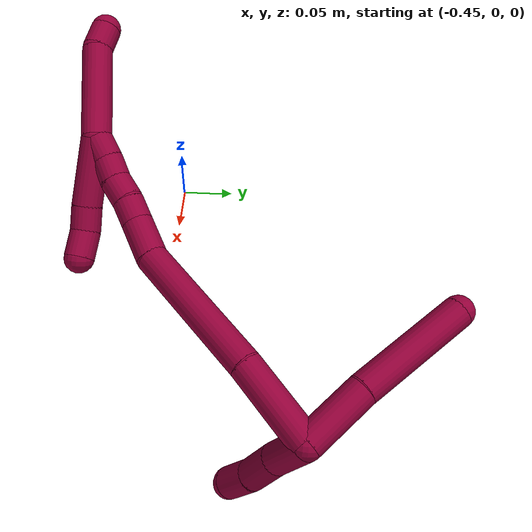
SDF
<sdf version="1.7">
 <world name="default">
  <model name="8">
   <static>0</static>
   <link name="8">
    <collision name="collision-cylinder-e_1_2_8">
     <pose>-0.003822 0.021256 0.016522 -0.91007 -0.141026 0.069088</pose>
     <geometry><cylinder><radius>0.0125</radius><length>0.054383</length></cylinder></geometry>
     <surface>
      <friction><ode><mu>1.16</mu><mu2>1.16</mu2><slip1>0</slip1><slip2>0</slip2></ode></friction>
      <contact><ode><kp>1e+06</kp><kd>1</kd><max_vel>0</max_vel><min_depth>0.001</min_depth></ode></contact>
     </surface>
    </collision>
    <visual name="visual-cylinder-e_1_2_8">
     <pose>-0.003822 0.021256 0.016522 -0.91007 -0.141026 0.069088</pose>
     <geometry><cylinder><radius>0.0125</radius><length>0.054383</length></cylinder></geometry>
     <material><ambient>0.584314 0 0.227451 1</ambient></material>
    </visual>
    <collision name="collision-cylinder-e_2_8_6">
     <pose>-0.015219 0.082707 0.057794 -1.01886 -0.159106 0.089007</pose>
     <geometry><cylinder><radius>0.0125</radius><length>0.095617</length></cylinder></geometry>
     <surface>
      <friction><ode><mu>1.16</mu><mu2>1.16</mu2><slip1>0</slip1><slip2>0</slip2></ode></friction>
      <contact><ode><kp>1e+06</kp><kd>1</kd><max_vel>0</max_vel><min_depth>0.001</min_depth></ode></contact>
     </surface>
    </collision>
    <visual name="visual-cylinder-e_2_8_6">
     <pose>-0.015219 0.082707 0.057794 -1.01886 -0.159106 0.089007</pose>
     <geometry><cylinder><radius>0.0125</radius><length>0.095617</length></cylinder></geometry>
     <material><ambient>0.584314 0 0.227451 1</ambient></material>
    </visual>
    <collision name="collision-cylinder-e_1_2_9">
     <pose>-0.014249 -0.004396 -0.012859 2.81215 -0.809071 -2.40092</pose>
     <geometry><cylinder><radius>0.0125</radius><length>0.03938</length></cylinder></geometry>
     <surface>
      <friction><ode><mu>1.16</mu><mu2>1.16</mu2><slip1>0</slip1><slip2>0</slip2></ode></friction>
      <contact><ode><kp>1e+06</kp><kd>1</kd><max_vel>0</max_vel><min_depth>0.001</min_depth></ode></contact>
     </surface>
    </collision>
    <visual name="visual-cylinder-e_1_2_9">
     <pose>-0.014249 -0.004396 -0.012859 2.81215 -0.809071 -2.40092</pose>
     <geometry><cylinder><radius>0.0125</radius><length>0.03938</length></cylinder></geometry>
     <material><ambient>0.584314 0 0.227451 1</ambient></material>
    </visual>
    <collision name="collision-cylinder-e_2_9_10">
     <pose>-0.038662 -0.013315 -0.037407 2.77252 -0.681418 -2.17235</pose>
     <geometry><cylinder><radius>0.0125</radius><length>0.032276</length></cylinder></geometry>
     <surface>
      <friction><ode><mu>1.16</mu><mu2>1.16</mu2><slip1>0</slip1><slip2>0</slip2></ode></friction>
      <contact><ode><kp>1e+06</kp><kd>1</kd><max_vel>0</max_vel><min_depth>0.001</min_depth></ode></contact>
     </surface>
    </collision>
    <visual name="visual-cylinder-e_2_9_10">
     <pose>-0.038662 -0.013315 -0.037407 2.77252 -0.681418 -2.17235</pose>
     <geometry><cylinder><radius>0.0125</radius><length>0.032276</length></cylinder></geometry>
     <material><ambient>0.584314 0 0.227451 1</ambient></material>
    </visual>
    <collision name="collision-cylinder-e_3_10_5">
     <pose>-0.058996 -0.022646 -0.057717 2.63266 -0.800255 -2.03885</pose>
     <geometry><cylinder><radius>0.0125</radius><length>0.028344</length></cylinder></geometry>
     <surface>
      <friction><ode><mu>1.16</mu><mu2>1.16</mu2><slip1>0</slip1><slip2>0</slip2></ode></friction>
      <contact><ode><kp>1e+06</kp><kd>1</kd><max_vel>0</max_vel><min_depth>0.001</min_depth></ode></contact>
     </surface>
    </collision>
    <visual name="visual-cylinder-e_3_10_5">
     <pose>-0.058996 -0.022646 -0.057717 2.63266 -0.800255 -2.03885</pose>
     <geometry><cylinder><radius>0.0125</radius><length>0.028344</length></cylinder></geometry>
     <material><ambient>0.584314 0 0.227451 1</ambient></material>
    </visual>
    <collision name="collision-cylinder-e_1_2_11">
     <pose>-0.024537 -0.015339 0.019575 0.664668 -0.778664 -0.28133</pose>
     <geometry><cylinder><radius>0.0125</radius><length>0.069872</length></cylinder></geometry>
     <surface>
      <friction><ode><mu>1.16</mu><mu2>1.16</mu2><slip1>0</slip1><slip2>0</slip2></ode></friction>
      <contact><ode><kp>1e+06</kp><kd>1</kd><max_vel>0</max_vel><min_depth>0.001</min_depth></ode></contact>
     </surface>
    </collision>
    <visual name="visual-cylinder-e_1_2_11">
     <pose>-0.024537 -0.015339 0.019575 0.664668 -0.778664 -0.28133</pose>
     <geometry><cylinder><radius>0.0125</radius><length>0.069872</length></cylinder></geometry>
     <material><ambient>0.584314 0 0.227451 1</ambient></material>
    </visual>
    <collision name="collision-cylinder-e_2_11_12">
     <pose>-0.094044 -0.055597 0.066355 0.741556 -0.883765 -0.363764</pose>
     <geometry><cylinder><radius>0.0125</radius><length>0.116333</length></cylinder></geometry>
     <surface>
      <friction><ode><mu>1.16</mu><mu2>1.16</mu2><slip1>0</slip1><slip2>0</slip2></ode></friction>
      <contact><ode><kp>1e+06</kp><kd>1</kd><max_vel>0</max_vel><min_depth>0.001</min_depth></ode></contact>
     </surface>
    </collision>
    <visual name="visual-cylinder-e_2_11_12">
     <pose>-0.094044 -0.055597 0.066355 0.741556 -0.883765 -0.363764</pose>
     <geometry><cylinder><radius>0.0125</radius><length>0.116333</length></cylinder></geometry>
     <material><ambient>0.584314 0 0.227451 1</ambient></material>
    </visual>
    <collision name="collision-cylinder-e_3_12_13">
     <pose>-0.151052 -0.084345 0.104571 0.334731 -0.801444 -0.142902</pose>
     <geometry><cylinder><radius>0.0125</radius><length>0.033516</length></cylinder></geometry>
     <surface>
      <friction><ode><mu>1.16</mu><mu2>1.16</mu2><slip1>0</slip1><slip2>0</slip2></ode></friction>
      <contact><ode><kp>1e+06</kp><kd>1</kd><max_vel>0</max_vel><min_depth>0.001</min_depth></ode></contact>
     </surface>
    </collision>
    <visual name="visual-cylinder-e_3_12_13">
     <pose>-0.151052 -0.084345 0.104571 0.334731 -0.801444 -0.142902</pose>
     <geometry><cylinder><radius>0.0125</radius><length>0.033516</length></cylinder></geometry>
     <material><ambient>0.584314 0 0.227451 1</ambient></material>
    </visual>
    <collision name="collision-cylinder-e_4_13_14">
     <pose>-0.168725 -0.091236 0.123377 0.374221 -0.592197 -0.115385</pose>
     <geometry><cylinder><radius>0.0125</radius><length>0.020189</length></cylinder></geometry>
     <surface>
      <friction><ode><mu>1.16</mu><mu2>1.16</mu2><slip1>0</slip1><slip2>0</slip2></ode></friction>
      <contact><ode><kp>1e+06</kp><kd>1</kd><max_vel>0</max_vel><min_depth>0.001</min_depth></ode></contact>
     </surface>
    </collision>
    <visual name="visual-cylinder-e_4_13_14">
     <pose>-0.168725 -0.091236 0.123377 0.374221 -0.592197 -0.115385</pose>
     <geometry><cylinder><radius>0.0125</radius><length>0.020189</length></cylinder></geometry>
     <material><ambient>0.584314 0 0.227451 1</ambient></material>
    </visual>
    <collision name="collision-cylinder-e_5_14_15">
     <pose>-0.18082 -0.098198 0.137778 0.533447 -0.699985 -0.198814</pose>
     <geometry><cylinder><radius>0.0125</radius><length>0.020058</length></cylinder></geometry>
     <surface>
      <friction><ode><mu>1.16</mu><mu2>1.16</mu2><slip1>0</slip1><slip2>0</slip2></ode></friction>
      <contact><ode><kp>1e+06</kp><kd>1</kd><max_vel>0</max_vel><min_depth>0.001</min_depth></ode></contact>
     </surface>
    </collision>
    <visual name="visual-cylinder-e_5_14_15">
     <pose>-0.18082 -0.098198 0.137778 0.533447 -0.699985 -0.198814</pose>
     <geometry><cylinder><radius>0.0125</radius><length>0.020058</length></cylinder></geometry>
     <material><ambient>0.584314 0 0.227451 1</ambient></material>
    </visual>
    <collision name="collision-cylinder-e_6_15_16">
     <pose>-0.193125 -0.10471 0.152078 0.327145 -0.623512 -0.106278</pose>
     <geometry><cylinder><radius>0.0125</radius><length>0.020019</length></cylinder></geometry>
     <surface>
      <friction><ode><mu>1.16</mu><mu2>1.16</mu2><slip1>0</slip1><slip2>0</slip2></ode></friction>
      <contact><ode><kp>1e+06</kp><kd>1</kd><max_vel>0</max_vel><min_depth>0.001</min_depth></ode></contact>
     </surface>
    </collision>
    <visual name="visual-cylinder-e_6_15_16">
     <pose>-0.193125 -0.10471 0.152078 0.327145 -0.623512 -0.106278</pose>
     <geometry><cylinder><radius>0.0125</radius><length>0.020019</length></cylinder></geometry>
     <material><ambient>0.584314 0 0.227451 1</ambient></material>
    </visual>
    <collision name="collision-cylinder-e_7_16_1">
     <pose>-0.203026 -0.111439 0.167941 0.466949 -0.417409 -0.100647</pose>
     <geometry><cylinder><radius>0.0125</radius><length>0.020014</length></cylinder></geometry>
     <surface>
      <friction><ode><mu>1.16</mu><mu2>1.16</mu2><slip1>0</slip1><slip2>0</slip2></ode></friction>
      <contact><ode><kp>1e+06</kp><kd>1</kd><max_vel>0</max_vel><min_depth>0.001</min_depth></ode></contact>
     </surface>
    </collision>
    <visual name="visual-cylinder-e_7_16_1">
     <pose>-0.203026 -0.111439 0.167941 0.466949 -0.417409 -0.100647</pose>
     <geometry><cylinder><radius>0.0125</radius><length>0.020014</length></cylinder></geometry>
     <material><ambient>0.584314 0 0.227451 1</ambient></material>
    </visual>
    <collision name="collision-cylinder-e_1_1_17">
     <pose>-0.20537 -0.118706 0.148274 3.02895 0.061086 0.99318</pose>
     <geometry><cylinder><radius>0.0125</radius><length>0.056131</length></cylinder></geometry>
     <surface>
      <friction><ode><mu>1.16</mu><mu2>1.16</mu2><slip1>0</slip1><slip2>0</slip2></ode></friction>
      <contact><ode><kp>1e+06</kp><kd>1</kd><max_vel>0</max_vel><min_depth>0.001</min_depth></ode></contact>
     </surface>
    </collision>
    <visual name="visual-cylinder-e_1_1_17">
     <pose>-0.20537 -0.118706 0.148274 3.02895 0.061086 0.99318</pose>
     <geometry><cylinder><radius>0.0125</radius><length>0.056131</length></cylinder></geometry>
     <material><ambient>0.584314 0 0.227451 1</ambient></material>
    </visual>
    <collision name="collision-cylinder-e_2_17_18">
     <pose>-0.202277 -0.122318 0.110121 3.09675 0.132744 2.49082</pose>
     <geometry><cylinder><radius>0.0125</radius><length>0.020839</length></cylinder></geometry>
     <surface>
      <friction><ode><mu>1.16</mu><mu2>1.16</mu2><slip1>0</slip1><slip2>0</slip2></ode></friction>
      <contact><ode><kp>1e+06</kp><kd>1</kd><max_vel>0</max_vel><min_depth>0.001</min_depth></ode></contact>
     </surface>
    </collision>
    <visual name="visual-cylinder-e_2_17_18">
     <pose>-0.202277 -0.122318 0.110121 3.09675 0.132744 2.49082</pose>
     <geometry><cylinder><radius>0.0125</radius><length>0.020839</length></cylinder></geometry>
     <material><ambient>0.584314 0 0.227451 1</ambient></material>
    </visual>
    <collision name="collision-cylinder-e_3_18_4">
     <pose>-0.19701 -0.125581 0.089333 2.88025 0.344393 1.84737</pose>
     <geometry><cylinder><radius>0.0125</radius><length>0.02303</length></cylinder></geometry>
     <surface>
      <friction><ode><mu>1.16</mu><mu2>1.16</mu2><slip1>0</slip1><slip2>0</slip2></ode></friction>
      <contact><ode><kp>1e+06</kp><kd>1</kd><max_vel>0</max_vel><min_depth>0.001</min_depth></ode></contact>
     </surface>
    </collision>
    <visual name="visual-cylinder-e_3_18_4">
     <pose>-0.19701 -0.125581 0.089333 2.88025 0.344393 1.84737</pose>
     <geometry><cylinder><radius>0.0125</radius><length>0.02303</length></cylinder></geometry>
     <material><ambient>0.584314 0 0.227451 1</ambient></material>
    </visual>
    <collision name="collision-cylinder-e_1_1_19">
     <pose>-0.226211 -0.113418 0.210689 -0.061786 -0.504467 0.015928</pose>
     <geometry><cylinder><radius>0.0125</radius><length>0.07915</length></cylinder></geometry>
     <surface>
      <friction><ode><mu>1.16</mu><mu2>1.16</mu2><slip1>0</slip1><slip2>0</slip2></ode></friction>
      <contact><ode><kp>1e+06</kp><kd>1</kd><max_vel>0</max_vel><min_depth>0.001</min_depth></ode></contact>
     </surface>
    </collision>
    <visual name="visual-cylinder-e_1_1_19">
     <pose>-0.226211 -0.113418 0.210689 -0.061786 -0.504467 0.015928</pose>
     <geometry><cylinder><radius>0.0125</radius><length>0.07915</length></cylinder></geometry>
     <material><ambient>0.584314 0 0.227451 1</ambient></material>
    </visual>
    <collision name="collision-cylinder-e_2_19_3">
     <pose>-0.250169 -0.107225 0.25357 -0.454262 -0.481642 0.113398</pose>
     <geometry><cylinder><radius>0.0125</radius><length>0.02085</length></cylinder></geometry>
     <surface>
      <friction><ode><mu>1.16</mu><mu2>1.16</mu2><slip1>0</slip1><slip2>0</slip2></ode></friction>
      <contact><ode><kp>1e+06</kp><kd>1</kd><max_vel>0</max_vel><min_depth>0.001</min_depth></ode></contact>
     </surface>
    </collision>
    <visual name="visual-cylinder-e_2_19_3">
     <pose>-0.250169 -0.107225 0.25357 -0.454262 -0.481642 0.113398</pose>
     <geometry><cylinder><radius>0.0125</radius><length>0.02085</length></cylinder></geometry>
     <material><ambient>0.584314 0 0.227451 1</ambient></material>
    </visual>
    <collision name="collision-sphere-3">
     <pose>-0.254998 -0.103171 0.261872 0 -0 0</pose>
     <geometry><sphere><radius>0.0125</radius></sphere></geometry>
     <surface>
      <friction><ode><mu>1.16</mu><mu2>1.16</mu2><slip1>0</slip1><slip2>0</slip2></ode></friction>
      <contact><ode><kp>1e+06</kp><kd>1</kd><max_vel>0</max_vel><min_depth>0.001</min_depth></ode></contact>
     </surface>
    </collision>
    <visual name="visual-sphere-3">
     <pose>-0.254998 -0.103171 0.261872 0 -0 0</pose>
     <geometry><sphere><radius>0.0125</radius></sphere></geometry>
     <material><ambient>0.584314 0 0.227451 1</ambient></material>
    </visual>
    <collision name="collision-sphere-19">
     <pose>-0.245339 -0.111279 0.245268 0 -0 0</pose>
     <geometry><sphere><radius>0.0125</radius></sphere></geometry>
     <surface>
      <friction><ode><mu>1.16</mu><mu2>1.16</mu2><slip1>0</slip1><slip2>0</slip2></ode></friction>
      <contact><ode><kp>1e+06</kp><kd>1</kd><max_vel>0</max_vel><min_depth>0.001</min_depth></ode></contact>
     </surface>
    </collision>
    <visual name="visual-sphere-19">
     <pose>-0.245339 -0.111279 0.245268 0 -0 0</pose>
     <geometry><sphere><radius>0.0125</radius></sphere></geometry>
     <material><ambient>0.584314 0 0.227451 1</ambient></material>
    </visual>
    <collision name="collision-sphere-5">
     <pose>-0.069166 -0.027456 -0.066338 0 -0 0</pose>
     <geometry><sphere><radius>0.0125</radius></sphere></geometry>
     <surface>
      <friction><ode><mu>1.16</mu><mu2>1.16</mu2><slip1>0</slip1><slip2>0</slip2></ode></friction>
      <contact><ode><kp>1e+06</kp><kd>1</kd><max_vel>0</max_vel><min_depth>0.001</min_depth></ode></contact>
     </surface>
    </collision>
    <visual name="visual-sphere-5">
     <pose>-0.069166 -0.027456 -0.066338 0 -0 0</pose>
     <geometry><sphere><radius>0.0125</radius></sphere></geometry>
     <material><ambient>0.584314 0 0.227451 1</ambient></material>
    </visual>
    <collision name="collision-sphere-10">
     <pose>-0.048827 -0.017836 -0.049097 0 -0 0</pose>
     <geometry><sphere><radius>0.0125</radius></sphere></geometry>
     <surface>
      <friction><ode><mu>1.16</mu><mu2>1.16</mu2><slip1>0</slip1><slip2>0</slip2></ode></friction>
      <contact><ode><kp>1e+06</kp><kd>1</kd><max_vel>0</max_vel><min_depth>0.001</min_depth></ode></contact>
     </surface>
    </collision>
    <visual name="visual-sphere-10">
     <pose>-0.048827 -0.017836 -0.049097 0 -0 0</pose>
     <geometry><sphere><radius>0.0125</radius></sphere></geometry>
     <material><ambient>0.584314 0 0.227451 1</ambient></material>
    </visual>
    <collision name="collision-sphere-6">
     <pose>-0.022793 0.122902 0.082545 0 -0 0</pose>
     <geometry><sphere><radius>0.0125</radius></sphere></geometry>
     <surface>
      <friction><ode><mu>1.16</mu><mu2>1.16</mu2><slip1>0</slip1><slip2>0</slip2></ode></friction>
      <contact><ode><kp>1e+06</kp><kd>1</kd><max_vel>0</max_vel><min_depth>0.001</min_depth></ode></contact>
     </surface>
    </collision>
    <visual name="visual-sphere-6">
     <pose>-0.022793 0.122902 0.082545 0 -0 0</pose>
     <geometry><sphere><radius>0.0125</radius></sphere></geometry>
     <material><ambient>0.584314 0 0.227451 1</ambient></material>
    </visual>
    <collision name="collision-sphere-9">
     <pose>-0.028497 -0.008793 -0.025717 0 -0 0</pose>
     <geometry><sphere><radius>0.0125</radius></sphere></geometry>
     <surface>
      <friction><ode><mu>1.16</mu><mu2>1.16</mu2><slip1>0</slip1><slip2>0</slip2></ode></friction>
      <contact><ode><kp>1e+06</kp><kd>1</kd><max_vel>0</max_vel><min_depth>0.001</min_depth></ode></contact>
     </surface>
    </collision>
    <visual name="visual-sphere-9">
     <pose>-0.028497 -0.008793 -0.025717 0 -0 0</pose>
     <geometry><sphere><radius>0.0125</radius></sphere></geometry>
     <material><ambient>0.584314 0 0.227451 1</ambient></material>
    </visual>
    <collision name="collision-sphere-2">
     <geometry><sphere><radius>0.0125</radius></sphere></geometry>
     <surface>
      <friction><ode><mu>1.16</mu><mu2>1.16</mu2><slip1>0</slip1><slip2>0</slip2></ode></friction>
      <contact><ode><kp>1e+06</kp><kd>1</kd><max_vel>0</max_vel><min_depth>0.001</min_depth></ode></contact>
     </surface>
    </collision>
    <visual name="visual-sphere-2">
     <geometry><sphere><radius>0.0125</radius></sphere></geometry>
     <material><ambient>0.584314 0 0.227451 1</ambient></material>
    </visual>
    <collision name="collision-sphere-8">
     <pose>-0.007644 0.042512 0.033043 0 -0 0</pose>
     <geometry><sphere><radius>0.0125</radius></sphere></geometry>
     <surface>
      <friction><ode><mu>1.16</mu><mu2>1.16</mu2><slip1>0</slip1><slip2>0</slip2></ode></friction>
      <contact><ode><kp>1e+06</kp><kd>1</kd><max_vel>0</max_vel><min_depth>0.001</min_depth></ode></contact>
     </surface>
    </collision>
    <visual name="visual-sphere-8">
     <pose>-0.007644 0.042512 0.033043 0 -0 0</pose>
     <geometry><sphere><radius>0.0125</radius></sphere></geometry>
     <material><ambient>0.584314 0 0.227451 1</ambient></material>
    </visual>
    <collision name="collision-sphere-11">
     <pose>-0.049073 -0.030679 0.03915 0 -0 0</pose>
     <geometry><sphere><radius>0.0125</radius></sphere></geometry>
     <surface>
      <friction><ode><mu>1.16</mu><mu2>1.16</mu2><slip1>0</slip1><slip2>0</slip2></ode></friction>
      <contact><ode><kp>1e+06</kp><kd>1</kd><max_vel>0</max_vel><min_depth>0.001</min_depth></ode></contact>
     </surface>
    </collision>
    <visual name="visual-sphere-11">
     <pose>-0.049073 -0.030679 0.03915 0 -0 0</pose>
     <geometry><sphere><radius>0.0125</radius></sphere></geometry>
     <material><ambient>0.584314 0 0.227451 1</ambient></material>
    </visual>
    <collision name="collision-sphere-12">
     <pose>-0.139014 -0.080515 0.09356 0 -0 0</pose>
     <geometry><sphere><radius>0.0125</radius></sphere></geometry>
     <surface>
      <friction><ode><mu>1.16</mu><mu2>1.16</mu2><slip1>0</slip1><slip2>0</slip2></ode></friction>
      <contact><ode><kp>1e+06</kp><kd>1</kd><max_vel>0</max_vel><min_depth>0.001</min_depth></ode></contact>
     </surface>
    </collision>
    <visual name="visual-sphere-12">
     <pose>-0.139014 -0.080515 0.09356 0 -0 0</pose>
     <geometry><sphere><radius>0.0125</radius></sphere></geometry>
     <material><ambient>0.584314 0 0.227451 1</ambient></material>
    </visual>
    <collision name="collision-sphere-13">
     <pose>-0.16309 -0.088174 0.115582 0 -0 0</pose>
     <geometry><sphere><radius>0.0125</radius></sphere></geometry>
     <surface>
      <friction><ode><mu>1.16</mu><mu2>1.16</mu2><slip1>0</slip1><slip2>0</slip2></ode></friction>
      <contact><ode><kp>1e+06</kp><kd>1</kd><max_vel>0</max_vel><min_depth>0.001</min_depth></ode></contact>
     </surface>
    </collision>
    <visual name="visual-sphere-13">
     <pose>-0.16309 -0.088174 0.115582 0 -0 0</pose>
     <geometry><sphere><radius>0.0125</radius></sphere></geometry>
     <material><ambient>0.584314 0 0.227451 1</ambient></material>
    </visual>
    <collision name="collision-sphere-14">
     <pose>-0.17436 -0.094298 0.131173 0 -0 0</pose>
     <geometry><sphere><radius>0.0125</radius></sphere></geometry>
     <surface>
      <friction><ode><mu>1.16</mu><mu2>1.16</mu2><slip1>0</slip1><slip2>0</slip2></ode></friction>
      <contact><ode><kp>1e+06</kp><kd>1</kd><max_vel>0</max_vel><min_depth>0.001</min_depth></ode></contact>
     </surface>
    </collision>
    <visual name="visual-sphere-14">
     <pose>-0.17436 -0.094298 0.131173 0 -0 0</pose>
     <geometry><sphere><radius>0.0125</radius></sphere></geometry>
     <material><ambient>0.584314 0 0.227451 1</ambient></material>
    </visual>
    <collision name="collision-sphere-15">
     <pose>-0.187281 -0.102099 0.144383 0 -0 0</pose>
     <geometry><sphere><radius>0.0125</radius></sphere></geometry>
     <surface>
      <friction><ode><mu>1.16</mu><mu2>1.16</mu2><slip1>0</slip1><slip2>0</slip2></ode></friction>
      <contact><ode><kp>1e+06</kp><kd>1</kd><max_vel>0</max_vel><min_depth>0.001</min_depth></ode></contact>
     </surface>
    </collision>
    <visual name="visual-sphere-15">
     <pose>-0.187281 -0.102099 0.144383 0 -0 0</pose>
     <geometry><sphere><radius>0.0125</radius></sphere></geometry>
     <material><ambient>0.584314 0 0.227451 1</ambient></material>
    </visual>
    <collision name="collision-sphere-16">
     <pose>-0.19897 -0.107321 0.159773 0 -0 0</pose>
     <geometry><sphere><radius>0.0125</radius></sphere></geometry>
     <surface>
      <friction><ode><mu>1.16</mu><mu2>1.16</mu2><slip1>0</slip1><slip2>0</slip2></ode></friction>
      <contact><ode><kp>1e+06</kp><kd>1</kd><max_vel>0</max_vel><min_depth>0.001</min_depth></ode></contact>
     </surface>
    </collision>
    <visual name="visual-sphere-16">
     <pose>-0.19897 -0.107321 0.159773 0 -0 0</pose>
     <geometry><sphere><radius>0.0125</radius></sphere></geometry>
     <material><ambient>0.584314 0 0.227451 1</ambient></material>
    </visual>
    <collision name="collision-sphere-1">
     <pose>-0.207083 -0.115557 0.17611 0 -0 0</pose>
     <geometry><sphere><radius>0.0125</radius></sphere></geometry>
     <surface>
      <friction><ode><mu>1.16</mu><mu2>1.16</mu2><slip1>0</slip1><slip2>0</slip2></ode></friction>
      <contact><ode><kp>1e+06</kp><kd>1</kd><max_vel>0</max_vel><min_depth>0.001</min_depth></ode></contact>
     </surface>
    </collision>
    <visual name="visual-sphere-1">
     <pose>-0.207083 -0.115557 0.17611 0 -0 0</pose>
     <geometry><sphere><radius>0.0125</radius></sphere></geometry>
     <material><ambient>0.584314 0 0.227451 1</ambient></material>
    </visual>
    <collision name="collision-sphere-18">
     <pose>-0.200898 -0.122781 0.099804 0 -0 0</pose>
     <geometry><sphere><radius>0.0125</radius></sphere></geometry>
     <surface>
      <friction><ode><mu>1.16</mu><mu2>1.16</mu2><slip1>0</slip1><slip2>0</slip2></ode></friction>
      <contact><ode><kp>1e+06</kp><kd>1</kd><max_vel>0</max_vel><min_depth>0.001</min_depth></ode></contact>
     </surface>
    </collision>
    <visual name="visual-sphere-18">
     <pose>-0.200898 -0.122781 0.099804 0 -0 0</pose>
     <geometry><sphere><radius>0.0125</radius></sphere></geometry>
     <material><ambient>0.584314 0 0.227451 1</ambient></material>
    </visual>
    <collision name="collision-sphere-17">
     <pose>-0.203656 -0.121855 0.120439 0 -0 0</pose>
     <geometry><sphere><radius>0.0125</radius></sphere></geometry>
     <surface>
      <friction><ode><mu>1.16</mu><mu2>1.16</mu2><slip1>0</slip1><slip2>0</slip2></ode></friction>
      <contact><ode><kp>1e+06</kp><kd>1</kd><max_vel>0</max_vel><min_depth>0.001</min_depth></ode></contact>
     </surface>
    </collision>
    <visual name="visual-sphere-17">
     <pose>-0.203656 -0.121855 0.120439 0 -0 0</pose>
     <geometry><sphere><radius>0.0125</radius></sphere></geometry>
     <material><ambient>0.584314 0 0.227451 1</ambient></material>
    </visual>
    <collision name="collision-sphere-4">
     <pose>-0.193123 -0.128382 0.078862 0 -0 0</pose>
     <geometry><sphere><radius>0.0125</radius></sphere></geometry>
     <surface>
      <friction><ode><mu>1.16</mu><mu2>1.16</mu2><slip1>0</slip1><slip2>0</slip2></ode></friction>
      <contact><ode><kp>1e+06</kp><kd>1</kd><max_vel>0</max_vel><min_depth>0.001</min_depth></ode></contact>
     </surface>
    </collision>
    <visual name="visual-sphere-4">
     <pose>-0.193123 -0.128382 0.078862 0 -0 0</pose>
     <geometry><sphere><radius>0.0125</radius></sphere></geometry>
     <material><ambient>0.584314 0 0.227451 1</ambient></material>
    </visual>
    <inertial>
     <pose>-0.1083 -0.045336 0.082619 0 -0 0</pose>
     <mass>0.75</mass>
     <inertia>
      <ixx>0.000196</ixx>
      <ixy>0</ixy>
      <ixz>0</ixz>
      <iyy>0.000234</iyy>
      <iyz>0</iyz>
      <izz>0.000193</izz>
     </inertia>
    </inertial>
   </link>
   <pose>-0.100935 0.129291 0.093614 -0.291455 -0.499278 0.451202</pose>
  </model>
 </world>
</sdf>
